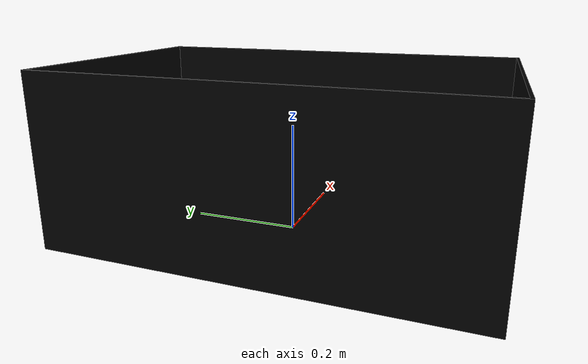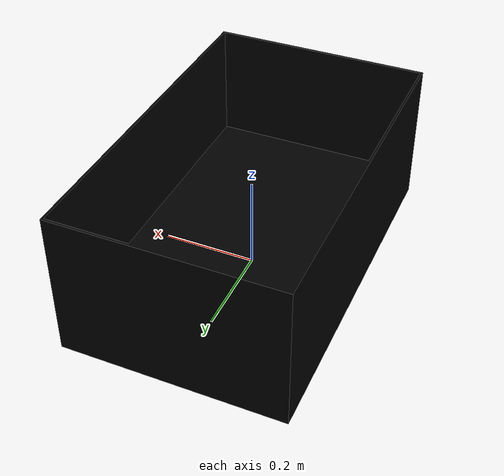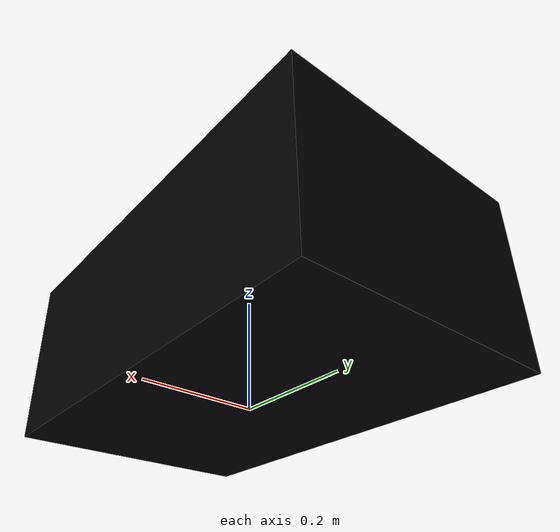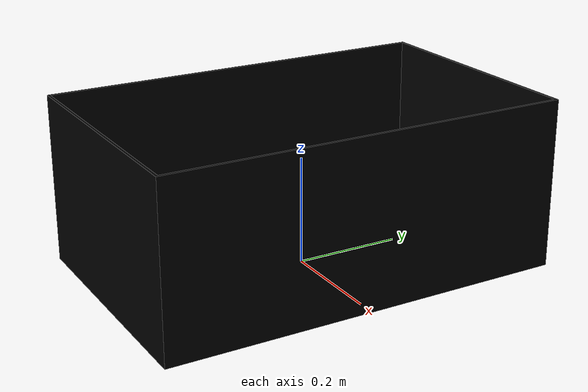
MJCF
<mujoco model="Cart_pocket">
  <default>
    <default class="visual">
      <geom group="2" type="mesh" contype="0" conaffinity="0"/>
    </default>
    <default class="collision">
      <geom group="3" type="mesh"/>
    </default>
  </default>
  <asset>
    <material name="Fabric_(Blue)" specular="0.5" shininess="0.5" rgba="0.000000 0.000000 0.000000 1.0"/>
    <mesh file="Cart_pocket.obj"/>
    <mesh file="Cart_pocket_collision_0.obj"/>
    <mesh file="Cart_pocket_collision_1.obj"/>
    <mesh file="Cart_pocket_collision_2.obj"/>
    <mesh file="Cart_pocket_collision_3.obj"/>
    <mesh file="Cart_pocket_collision_4.obj"/>
    <mesh file="Cart_pocket_collision_5.obj"/>
    <mesh file="Cart_pocket_collision_6.obj"/>
    <mesh file="Cart_pocket_collision_7.obj"/>
    <mesh file="Cart_pocket_collision_8.obj"/>
    <mesh file="Cart_pocket_collision_9.obj"/>
    <mesh file="Cart_pocket_collision_10.obj"/>
    <mesh file="Cart_pocket_collision_11.obj"/>
    <mesh file="Cart_pocket_collision_12.obj"/>
    <mesh file="Cart_pocket_collision_13.obj"/>
    <mesh file="Cart_pocket_collision_14.obj"/>
  </asset>
  <worldbody>
    <body name="Cart_pocket">
      <geom material="Fabric_(Blue)" mesh="Cart_pocket" class="visual"/>
      <geom mesh="Cart_pocket_collision_0" rgba="0.5717272794142477 0.599480893773202 0.2531209564751131 1" class="collision"/>
      <geom mesh="Cart_pocket_collision_1" rgba="0.837332926493129 0.7035183909159571 0.9986204051061928 1" class="collision"/>
      <geom mesh="Cart_pocket_collision_2" rgba="0.20452615939754537 0.4212757571017778 0.6627262281089016 1" class="collision"/>
      <geom mesh="Cart_pocket_collision_3" rgba="0.22526791355618692 0.3505529487814595 0.7325069577453303 1" class="collision"/>
      <geom mesh="Cart_pocket_collision_4" rgba="0.26073612105165866 0.1592602317018056 0.9245585218601361 1" class="collision"/>
      <geom mesh="Cart_pocket_collision_5" rgba="0.40005896098553995 0.26024044342172825 0.5932066036426715 1" class="collision"/>
      <geom mesh="Cart_pocket_collision_6" rgba="0.2251188177930452 0.09143916848850553 0.839315691717106 1" class="collision"/>
      <geom mesh="Cart_pocket_collision_7" rgba="0.441208631250282 0.6105639544067246 0.904661482792174 1" class="collision"/>
      <geom mesh="Cart_pocket_collision_8" rgba="0.1878018015230224 0.07700933199353766 0.5665796766482837 1" class="collision"/>
      <geom mesh="Cart_pocket_collision_9" rgba="0.23805217245816368 0.2304872150131636 0.40402528338288246 1" class="collision"/>
      <geom mesh="Cart_pocket_collision_10" rgba="0.050749819259850004 0.1175694212439683 0.15817769077546706 1" class="collision"/>
      <geom mesh="Cart_pocket_collision_11" rgba="0.9632351437193015 0.0734425580792466 0.08421366051459955 1" class="collision"/>
      <geom mesh="Cart_pocket_collision_12" rgba="0.0020911074931839746 0.6340961513733012 0.7818545549982324 1" class="collision"/>
      <geom mesh="Cart_pocket_collision_13" rgba="0.49915831467175276 0.7569993698397026 0.5971994919506687 1" class="collision"/>
      <geom mesh="Cart_pocket_collision_14" rgba="0.8770730994267929 0.9795099055555431 0.8609736922038848 1" class="collision"/>
    </body>
  </worldbody>
</mujoco>
